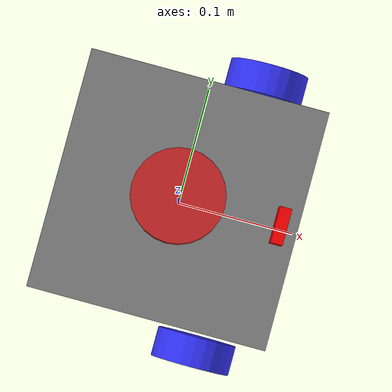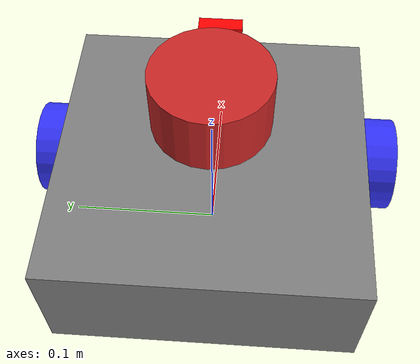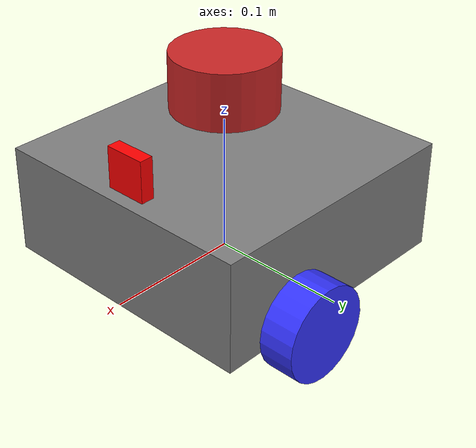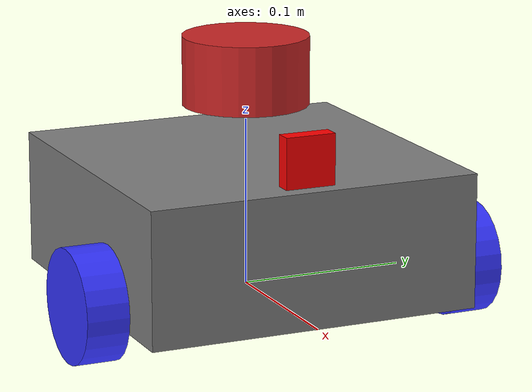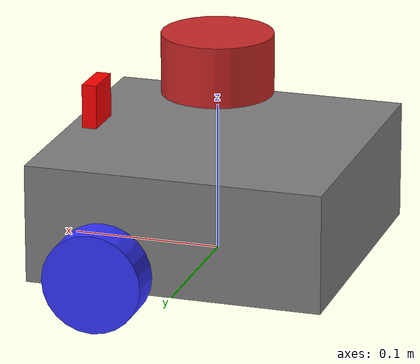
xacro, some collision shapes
<?xml version="1.0"?>
<robot xmlns:xacro="http://www.ros.org/wiki/xacro"  name="lapyBot">

    <xacro:arg name="use_ros2_control" default="true"/>
    <xacro:arg name="sim_mode" default="false"/>

    <xacro:include filename="robot_core.xacro" />

     <xacro:if value="$(arg use_ros2_control)">
        <xacro:include filename="ros2_control.xacro" />
    </xacro:if>
    <xacro:unless value="$(arg use_ros2_control)">
        <xacro:include filename="gazebo_control.xacro" />
    </xacro:unless>

    <xacro:include filename="camera.xacro" />
    <xacro:include filename="lidar.xacro" />

</robot>

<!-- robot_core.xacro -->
<robot xmlns:xacro="http://www.ros.org/wiki/xacro">

    <xacro:include filename="link_macros.xacro"/>
    <xacro:include filename="inertial_macros.xacro"/>
    <xacro:include filename="materials.xacro" />
    <xacro:include filename="gazebo_tags.xacro" />

    <xacro:property name="chassis_length" value="0.2"/>
    <xacro:property name="chassis_width" value="0.2"/>
    <xacro:property name="chassis_height" value="0.08"/>
    <xacro:property name="chassis_mass" value="1.0"/>
    <xacro:property name="wheel_radius" value="0.0335"/>  <!-- was 0.0325 before new frame -->
    <xacro:property name="wheel_thickness" value="0.025"/>
    <xacro:property name="wheel_mass" value="0.05"/>
    <xacro:property name="wheel_offset_x" value="0.045"/>
    <xacro:property name="wheel_offset_y" value="0.117"/>
    <xacro:property name="wheel_offset_z" value="0.01425"/>
    <xacro:property name="caster_wheel_radius" value="0.0125"/> <!-- 0.0205 if offset_z = 0-->
    <xacro:property name="caster_wheel_mass" value="0.01"/>
    <xacro:property name="caster_wheel_offset_x" value="0.06"/>
    <xacro:property name="caster_wheel_offset_z" value="${wheel_offset_z - wheel_radius + caster_wheel_radius}"/>

    <!-- BASE LINK -->

    <link name="base_link">
    </link>

    <!-- BASE_FOOTPRINT LINK -->
    <!-- use for slam -->

    <joint name="base_footprint_joint" type="fixed">
        <parent link="base_link"/>
        <child link="base_footprint"/>
        <origin xyz="0 0 0" rpy="0 0 0"/>
    </joint>

    <link name="base_footprint">
    </link>

    <!-- CHASSIS -->

    <joint name="chassis_joint" type="fixed">
        <parent link="base_link"/>
        <child link="chassis"/>
        <origin xyz="0 0 0" rpy="0 0 0"/>
    </joint>

    <link name="chassis">
        <visual>
            <origin xyz="0 0 ${chassis_height/2}"/>
            <geometry>
                <box size="${chassis_length} ${chassis_width} ${chassis_height}"/>
            </geometry>
            <material name="light_grey"/>
        </visual>
        <collision>
            <origin xyz="0 0 ${chassis_height/2}"/>
            <geometry>
                <box size="${chassis_length} ${chassis_width} ${chassis_height}"/>
            </geometry>
        </collision>
        <xacro:inertial_box mass="${chassis_mass}" x="${chassis_length}" y="${chassis_width}" z="${chassis_height}">
            <origin xyz="0 0 ${chassis_height/2}" rpy="0 0 0"/>
        </xacro:inertial_box>
    </link>

    <!-- LEFT WHEEL -->

    <joint name="left_wheel_joint" type="continuous">
        <parent link="base_link"/>
        <child link="left_wheel"/>
        <origin xyz="${wheel_offset_x} ${wheel_offset_y} ${wheel_offset_z}" rpy="-${pi/2} 0 0" />
        <axis xyz="0 0 1"/>
        <limit effort="10000" velocity="1000"/>
        <joint_properties damping="1.0" friction="1.0"/>
    </joint>

    <xacro:wheel_link wheel_name="left_wheel" />

    <!-- RIGHT WHEEL -->

    <joint name="right_wheel_joint" type="continuous">
        <parent link="base_link"/>
        <child link="right_wheel"/>
        <origin xyz="${wheel_offset_x} ${-wheel_offset_y} ${wheel_offset_z}" rpy="${pi/2} 0 0" />
        <axis xyz="0 0 -1"/>
        <limit effort="10000" velocity="1000"/>
        <joint_properties damping="1.0" friction="1.0"/>
    </joint>

    <xacro:wheel_link wheel_name="right_wheel" />

    <!-- Caster Wheel Front -->

    <joint name="front_yaw_joint" type="continuous">
        <origin rpy="0 0 0" xyz="${-caster_wheel_offset_x} 0 ${caster_wheel_offset_z}" />
        <parent link="chassis" />
        <child link="front_yaw_link" />
        <axis xyz="0 0 1" />
        <limit effort="1000.0" velocity="100.0" />
        <dynamics damping="0.0" friction="0.1"/>
    </joint>

    <link name="front_yaw_link">
      <visual>
        <origin rpy="0 1.5707 1.5707" xyz="0 0 0"/>
        <geometry>
          <sphere radius="${caster_wheel_radius}"/>
        </geometry>
        <material name="white"/>
      </visual>

      <collision>
        <origin rpy="0 1.5707 1.5707" xyz="0 0 0"/>
        <geometry>
          <sphere radius="${caster_wheel_radius}"/>
        </geometry>
      </collision>

      <inertial>
          <origin rpy="0 1.5707 1.5707" xyz="0 0 0"/>
          <mass value="0.001"/>
          <inertia ixx="5.145833333333334e-09" ixy="0" ixz="0" iyy="5.145833333333334e-09" iyz="0" izz="1.0125000000000003e-08"/>
      </inertial>

  </link>

  <joint name="front_roll_joint" type="continuous">
    <origin rpy="0 0 0" xyz="0 0 0" />
    <parent link="front_yaw_link" />
    <child link="front_roll_link" />
    <axis xyz="1 0 0" />
    <limit effort="1000.0" velocity="100.0" />
    <dynamics damping="0.0" friction="0.1"/>
  </joint>

  <link name="front_roll_link">
      <visual>
        <origin rpy="0 1.5707 1.5707" xyz="0 0 0"/>
        <geometry>
          <sphere radius="${caster_wheel_radius}"/>
        </geometry>
        <material name="white"/>
      </visual>

      <collision>
        <origin rpy="0 1.5707 1.5707" xyz="0 0 0"/>
        <geometry>
          <sphere radius="${caster_wheel_radius}"/>
        </geometry>
      </collision>

      <inertial>
          <origin rpy="0 1.5707 1.5707" xyz="0 0 0"/>
          <mass value="0.001"/>
          <inertia ixx="5.145833333333334e-09" ixy="0" ixz="0" iyy="5.145833333333334e-09" iyz="0" izz="1.0125000000000003e-08"/>
      </inertial>
  </link>

  <joint name="front_pitch_joint" type="continuous">
    <origin rpy="0 0 0" xyz="0 0 0" />
    <parent link="front_roll_link" />
    <child link="front_pitch_link" />
    <axis xyz="0 1 0" />
    <limit effort="1000.0" velocity="100.0" />
    <dynamics damping="0.0" friction="0.1"/>
  </joint>

  <link name="front_pitch_link">
    <visual>
      <origin rpy="0 1.5707 1.5707" xyz="0 0 0"/>
      <geometry>
        <sphere radius="${caster_wheel_radius}"/>
      </geometry>
      <material name="white"/>
    </visual>

    <collision>
      <origin rpy="0 1.5707 1.5707" xyz="0 0 0"/>
      <geometry>
        <sphere radius="${caster_wheel_radius}"/>
      </geometry>
    </collision>

    <inertial>
        <origin rpy="0 1.5707 1.5707" xyz="0 0 0"/>
        <mass value="0.001"/>
        <inertia ixx="4e-08" ixy="0" ixz="0" iyy="4e-08" iyz="0" izz="4e-08"/>
    </inertial>
  </link>

</robot>

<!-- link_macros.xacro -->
<robot xmlns:xacro="http://www.ros.org/wiki/xacro" >

    <!-- Specify some standard inertial calculations https://en.wikipedia.org/wiki/List_of_moments_of_inertia -->
    <!-- These make use of xacro's mathematical functionality -->

    <xacro:macro name="wheel_link" params="wheel_name">
        <link name="${wheel_name}">
        <visual>
            <geometry>
                <cylinder radius="${wheel_radius}" length="${wheel_thickness}"/>
            </geometry>
            <material name="blue"/>
        </visual>
        <collision>
            <geometry>
                <cylinder radius="${wheel_radius}" length="${wheel_thickness}"/>
            </geometry>
        </collision>
        <xacro:inertial_cylinder mass="${wheel_mass}" radius="${wheel_radius}" length="${wheel_thickness}" >
            <origin xyz="0 0 0" rpy="0 0 0"/>
        </xacro:inertial_cylinder>
    </link>
    </xacro:macro>

</robot>

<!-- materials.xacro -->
<robot xmlns:xacro="http://www.ros.org/wiki/xacro" >

    <material name="white">
        <color rgba="1 1 1 1" />
    </material>

    <material name="light_grey">
        <color rgba="0.5 0.5 0.5 1" />
    </material>

    <material name="red">
        <color rgba="1.0 0 0 1"/>
    </material>

    <material name="orange">
        <color rgba="1 0.3 0.1 1"/>
    </material>

    <material name="Yellow">
        <color rgba="0.9 1.0 0.1 1"/>
    </material>

    <material name="green">
        <color rgba="0.0 1.0 0 1"/>
    </material>

    <material name="blue">
        <color rgba="0.2 0.2 1 1"/>
    </material>

    <material name="black">
        <color rgba="0 0 0 1"/>
    </material>

</robot>

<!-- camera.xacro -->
<robot xmlns:xacro="http://www.ros.org/wiki/xacro" >

  <xacro:property name="camera_length" value="0.010"/>
  <xacro:property name="camera_width" value="0.03"/>
  <xacro:property name="camera_height" value="0.03"/>

  <joint name="camera_joint" type="fixed">
    <parent link="chassis"/>
    <child link="camera_link"/>
    <origin xyz="${chassis_length / 2} 0 ${chassis_height}" rpy="0 0 0"/>
  </joint>

  <link name="camera_link">
    <visual>
      <origin xyz="${-camera_width / 2} 0 ${camera_height / 2}" rpy="0 0 0"/>
      <geometry>
        <box size="${camera_length} ${camera_width} ${camera_height}"/>
      </geometry>
      <material name="red"/>
    </visual>
    <collision>
      <geometry>
        <box size="${camera_length} ${camera_width} ${camera_height}"/>
      </geometry>
    </collision>
  </link>

  <joint name="camera_optical_joint" type="fixed">
    <parent link="camera_link"/>
    <child link="camera_link_optical"/>
    <origin xyz="0 0 0" rpy="${-pi/2} 0 ${-pi/2}"/>
  </joint>

  <link name="camera_link_optical">
  </link>

  <gazebo reference="camera_link">
    <material>Gazebo/Red</material>

    <sensor name="camera" type="depth">
        <pose> 0 0 0 0 0 0 </pose>
        <visualize>true</visualize>
        <update_rate>10</update_rate>
        <camera>
            <horizontal_fov>1.089</horizontal_fov>
            <image>
                <format>B8G8R8</format>
                <width>640</width>
                <height>480</height>
            </image>
            <clip>
                <near>0.05</near>
                <far>8.0</far>
            </clip>
        </camera>
        <plugin name="camera_controller" filename="libgazebo_ros_camera.so">
            <frame_name>camera_link_optical</frame_name>
            <min_depth>0.1</min_depth>
            <max_depth>100</max_depth>
        </plugin>
    </sensor>
  </gazebo>

</robot>

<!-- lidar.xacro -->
<robot xmlns:xacro="http://www.ros.org/wiki/xacro" >

  <xacro:property name="lidar_height_from_top_chassis" value="0.02"/>

  <xacro:property name="lidar_link_radius" value="0.03"/>
  <xacro:property name="lidar_link_height" value="0.02"/>
  <xacro:property name="lidar_scan_height" value="0.03"/>
  <xacro:property name="lidar_mass" value="0.05"/>

    <joint name="laser_joint" type="fixed">
        <parent link="chassis"/>
        <child link="laser_frame"/>
        <origin rpy="0 0 0" xyz="0.0 0.0 ${chassis_height + lidar_height_from_top_chassis + lidar_scan_height}"/>
    </joint>

    <link name="laser_frame">
        <visual>
            <geometry>
                <mesh filename="package://lapy_description/meshes/sensors/rplidar.dae" scale="1.0 1.0 1.0"/>
            </geometry>
        </visual>
        <collision>
            <geometry>
                <cylinder length="0.0408" radius="0.037493"/>
            </geometry>
        </collision>
        <xacro:inertial_cylinder mass="0.1" length="0.04" radius="0.05">
            <origin xyz="0 0 0" rpy="0 0 0"/>
        </xacro:inertial_cylinder>
    </link>

    <gazebo reference="laser_frame">
        <material>Gazebo/Red</material>

        <sensor name="laser" type="ray">
            <pose> 0 0 0 0 0 0 </pose>
            <visualize>true</visualize>
            <update_rate>10</update_rate>
            <ray>
                <scan>
                    <horizontal>
                        <samples>360</samples>
                        <min_angle>-3.14</min_angle>
                        <max_angle>3.14</max_angle>
                    </horizontal>
                </scan>
                <range>
                    <min>0.15</min>
                    <max>12.0</max>
                </range>
            </ray>
            <plugin name="laser_controller" filename="libgazebo_ros_ray_sensor.so">
                <ros>
                    <argument>~/out:=scan</argument>
                </ros>
                <output_type>sensor_msgs/LaserScan</output_type>
                <frame_name>laser_frame</frame_name>
            </plugin>
        </sensor>
    </gazebo>

</robot>
